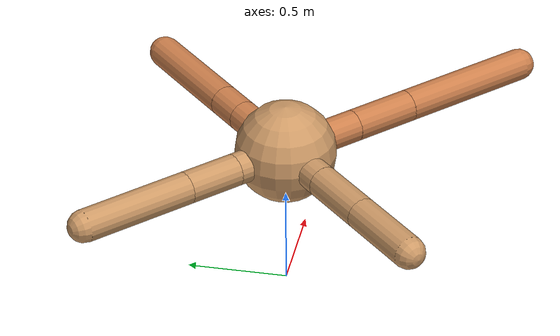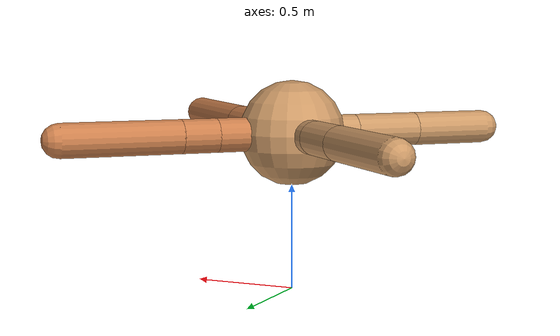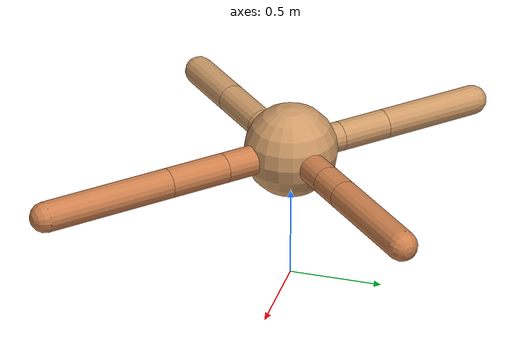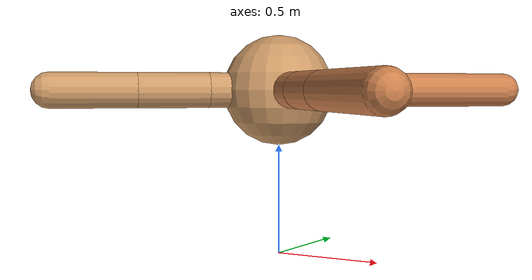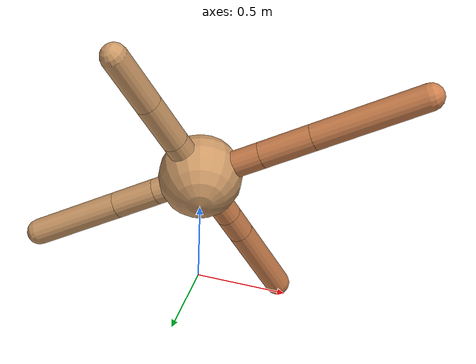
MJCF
<mujoco model="ant">
  <compiler angle="degree" coordinate="local" inertiafromgeom="true" />
  <option integrator="RK4" timestep="0.01" />
  <custom>
    <numeric data="0.0 0.0 0.55 1.0 0.0 0.0 0.0 0.0 1.0 0.0 -1.0 0.0 -1.0 0.0 1.0" name="init_qpos" />
  </custom>
  <default>
    <joint armature="1" damping="1" limited="true" />
    <geom conaffinity="0" condim="3" density="5.0" friction="1.5 0.1 0.1" margin="0.01" rgba="0.8 0.6 0.4 1" />
  </default>
  <worldbody>
    <body name="torso" pos="0 0 0.75">
      <geom name="torso_geom" pos="0 0 0" size="0.25" type="sphere" />

      <body name="front_left_leg" pos="0 0 0">
        <geom fromto="0.0 0.0 0.0 0.2661745951028503 0.2661745951028503 0.0" name="aux_1_geom" size="0.08" type="capsule" rgba=".8 .5 .3 1" />
        <body name="aux_1" pos="0.2661745951028503 0.2661745951028503 0.0">
          <joint axis="0 0 1" name="hip_1" pos="0.0 0.0 0.0" range="-40 40" type="hinge" />
          <geom fromto="0.0 0.0 0.0 0.12053451380168466 0.12053451380168466 0.0" name="left_leg_geom" size="0.08" type="capsule" rgba=".8 .5 .3 1" />
          <body pos="0.12053451380168466 0.12053451380168466 0.0" name="front_left_foot">
            <joint axis="-1 1 0" name="ankle_1" pos="0.0 0.0 0.0" range="30 100" type="hinge" />
            <geom fromto="0.0 0.0 0.0 0.4005179058599455 0.4005179058599455 0.0" name="left_ankle_geom" size="0.08" type="capsule" rgba=".8 .5 .3 1" />
          </body>
        </body>
      </body>
      <body name="front_right_leg" pos="0 0 0">
        <geom fromto="0.0 0.0 0.0 -0.2076501517365934 0.2076501517365934 0.0" name="aux_2_geom" size="0.08" type="capsule" />
        <body name="aux_2" pos="-0.2076501517365934 0.2076501517365934 0.0">
          <joint axis="0 0 1" name="hip_2" pos="0.0 0.0 0.0" range="-40 40" type="hinge" />
          <geom fromto="0.0 0.0 0.0 -0.1918375305871785 0.1918375305871785 0.0" name="right_leg_geom" size="0.08" type="capsule" />
          <body pos="-0.1918375305871785 0.1918375305871785 0.0" name="front_right_foot">
            <joint axis="1 1 0" name="ankle_2" pos="0.0 0.0 0.0" range="-100 -30" type="hinge" />
            <geom fromto="0.0 0.0 0.0 -0.3951476564485155 0.3951476564485155 0.0" name="right_ankle_geom" size="0.08" type="capsule" />
          </body>
        </body>
      </body>
      <body name="left_back_leg" pos="0 0 0">
        <geom fromto="0.0 0.0 0.0 -0.22799580608743641 -0.22799580608743641 0.0" name="aux_3_geom" size="0.08" type="capsule" />
        <body name="aux_3" pos="-0.22799580608743641 -0.22799580608743641 0.0">
          <joint axis="0 0 1" name="hip_3" pos="0.0 0.0 0.0" range="-40 40" type="hinge" />
          <geom fromto="0.0 0.0 0.0 -0.22459139030686037 -0.22459139030686037 0.0" name="back_leg_geom" size="0.08" type="capsule" />
          <body pos="-0.22459139030686037 -0.22459139030686037 0.0" name="left_back_foot">
            <joint axis="-1 1 0" name="ankle_3" pos="0.0 0.0 0.0" range="-100 -30" type="hinge" />
            <geom fromto="0.0 0.0 0.0 -0.26472419052974316 -0.26472419052974316 0.0" name="third_ankle_geom" size="0.08" type="capsule" />
          </body>
        </body>
      </body>
      <body name="right_back_leg" pos="0 0 0">
        <geom fromto="0.0 0.0 0.0 0.28336888802373966 -0.28336888802373966 0.0" name="aux_4_geom" size="0.08" type="capsule" rgba=".8 .5 .3 1" />
        <body name="aux_4" pos="0.28336888802373966 -0.28336888802373966 0.0">
          <joint axis="0 0 1" name="hip_4" pos="0.0 0.0 0.0" range="-40 40" type="hinge" />
          <geom fromto="0.0 0.0 0.0 0.22979023171145935 -0.22979023171145935 0.0" name="rightback_leg_geom" size="0.08" type="capsule" rgba=".8 .5 .3 1" />
          <body pos="0.22979023171145935 -0.22979023171145935 0.0" name="right_back_foot">
            <joint axis="1 1 0" name="ankle_4" pos="0.0 0.0 0.0" range="30 100" type="hinge" />
            <geom fromto="0.0 0.0 0.0 0.49410383170062055 -0.49410383170062055 0.0" name="fourth_ankle_geom" size="0.08" type="capsule" rgba=".8 .5 .3 1" />
          </body>
        </body>
      </body>
    </body>
  </worldbody>
  <actuator>
    <motor ctrllimited="true" ctrlrange="-1.0 1.0" joint="hip_4" gear="150" />
    <motor ctrllimited="true" ctrlrange="-1.0 1.0" joint="ankle_4" gear="150" />
    <motor ctrllimited="true" ctrlrange="-1.0 1.0" joint="hip_1" gear="150" />
    <motor ctrllimited="true" ctrlrange="-1.0 1.0" joint="ankle_1" gear="150" />
    <motor ctrllimited="true" ctrlrange="-1.0 1.0" joint="hip_2" gear="150" />
    <motor ctrllimited="true" ctrlrange="-1.0 1.0" joint="ankle_2" gear="150" />
    <motor ctrllimited="true" ctrlrange="-1.0 1.0" joint="hip_3" gear="150" />
    <motor ctrllimited="true" ctrlrange="-1.0 1.0" joint="ankle_3" gear="150" />
  </actuator>
</mujoco>
